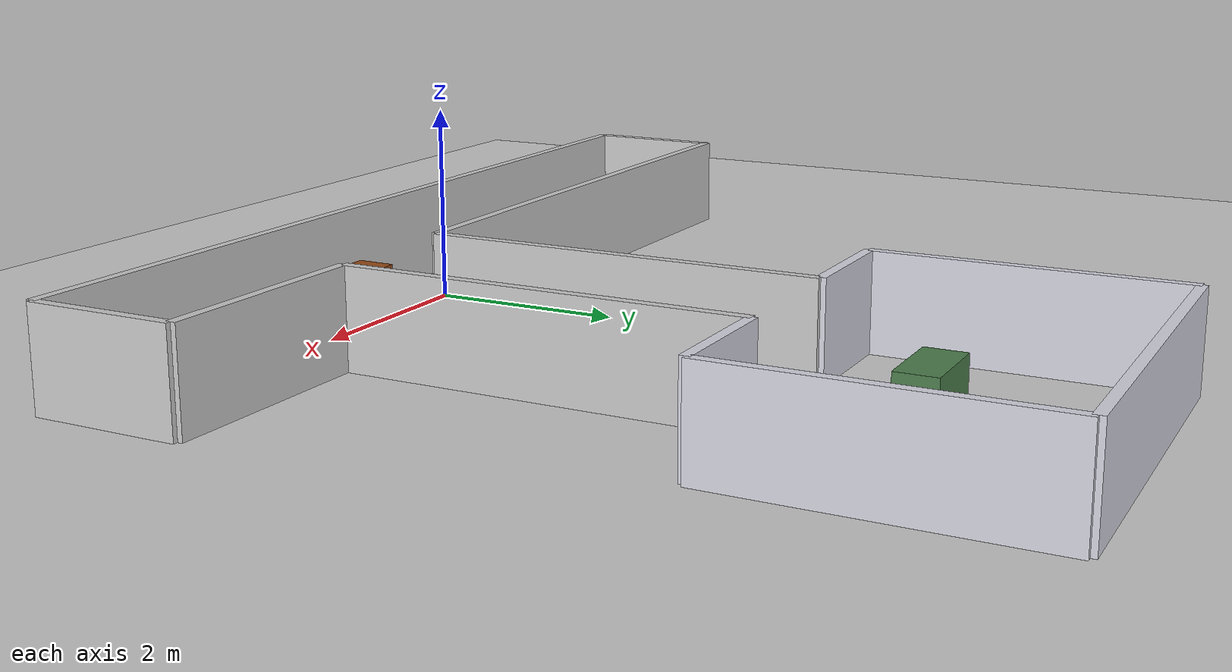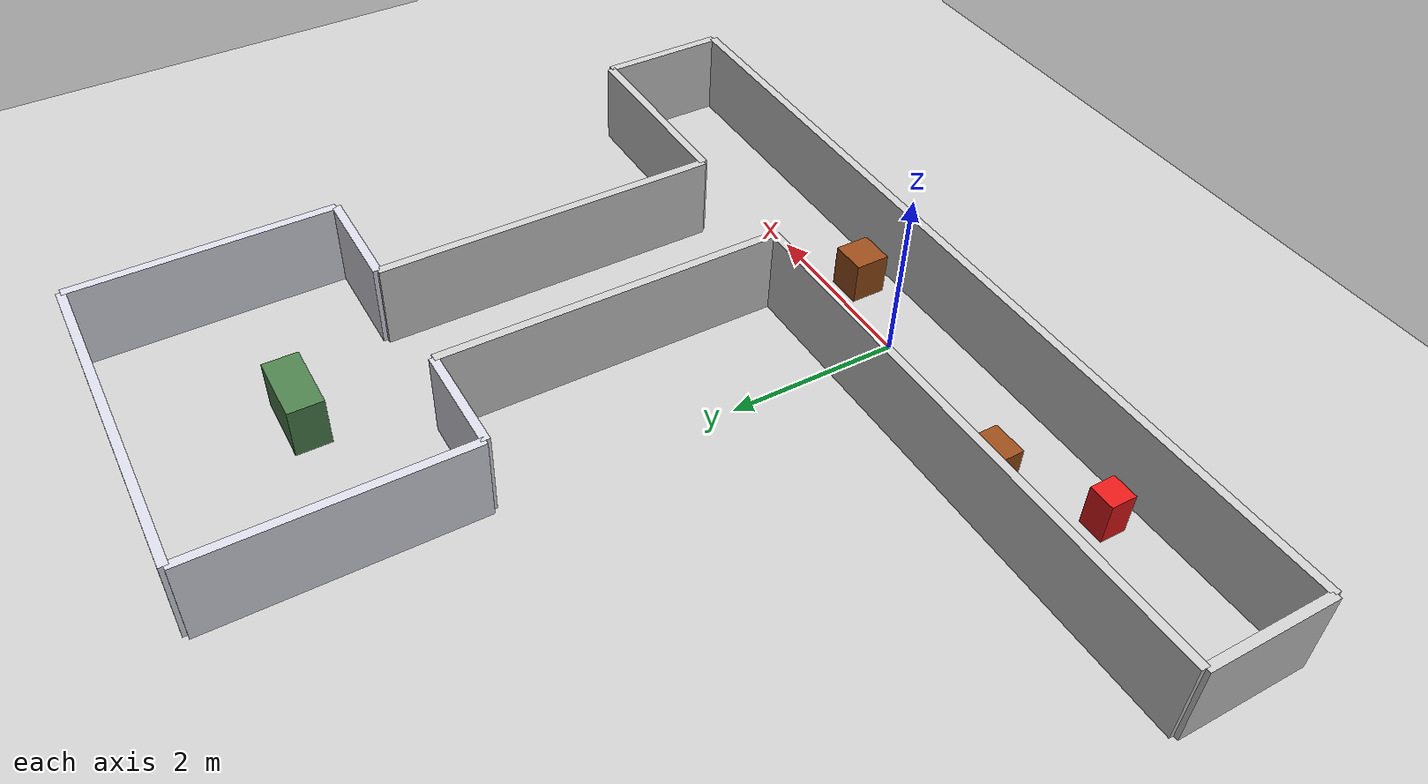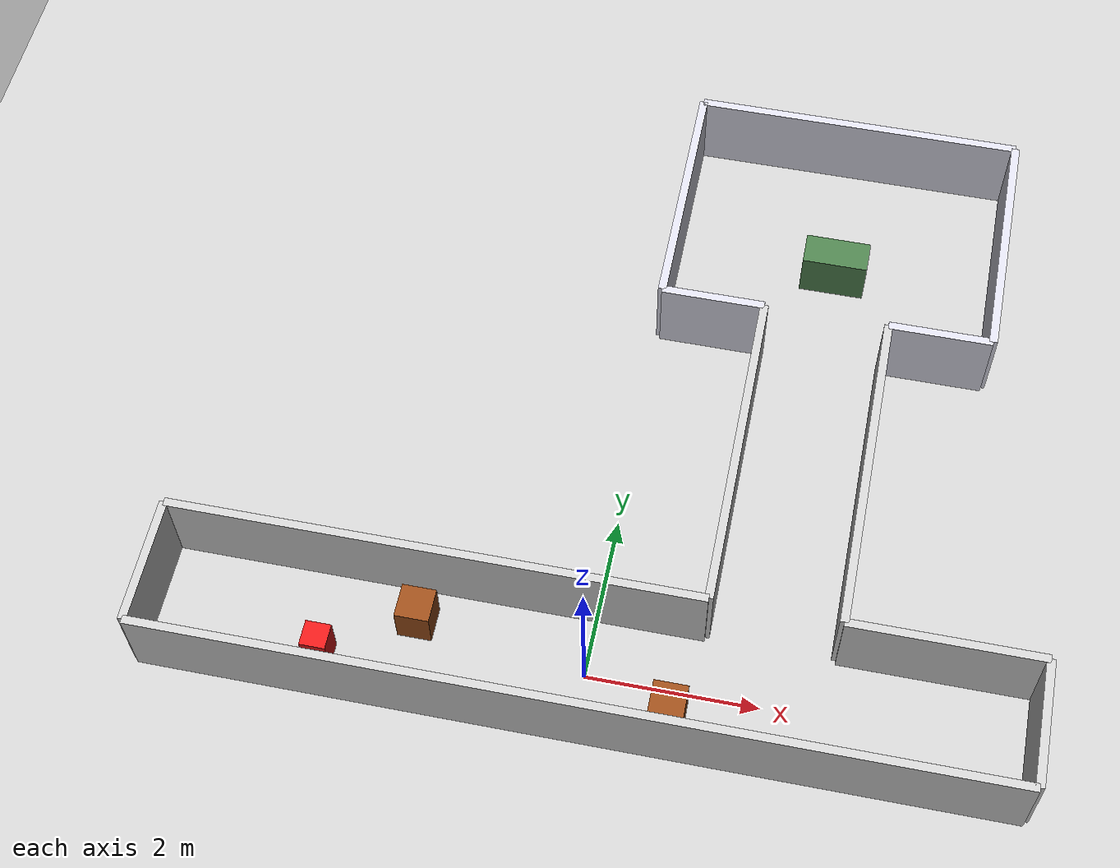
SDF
<?xml version="1.0" ?>
<sdf version="1.6">
  <world name="augdd_hospital">

    <include><uri>model://sun</uri></include>
    <include><uri>model://ground_plane</uri></include>

    <physics type="ode">
      <max_step_size>0.001</max_step_size>
      <real_time_factor>1</real_time_factor>
      <real_time_update_rate>1000</real_time_update_rate>
    </physics>

    <model name="wall_north_1">
      <static>true</static>
      <pose>-1.875 0.75 0.5 0 0 0</pose>
      <link name="link">
        <collision name="c"><geometry><box><size>6.25 0.1 1.0</size></box></geometry></collision>
        <visual name="v"><geometry><box><size>6.25 0.1 1.0</size></box></geometry>
          <material><ambient>0.8 0.8 0.8 1</ambient><diffuse>0.8 0.8 0.8 1</diffuse></material>
        </visual>
      </link>
    </model>

    <model name="wall_north_2">
      <static>true</static>
      <pose>3.875 0.75 0.5 0 0 0</pose>
      <link name="link">
        <collision name="c"><geometry><box><size>2.25 0.1 1.0</size></box></geometry></collision>
        <visual name="v"><geometry><box><size>2.25 0.1 1.0</size></box></geometry>
          <material><ambient>0.8 0.8 0.8 1</ambient><diffuse>0.8 0.8 0.8 1</diffuse></material>
        </visual>
      </link>
    </model>

    <model name="wall_south">
      <static>true</static>
      <pose>0 -0.75 0.5 0 0 0</pose>
      <link name="link">
        <collision name="c"><geometry><box><size>10.0 0.1 1.0</size></box></geometry></collision>
        <visual name="v"><geometry><box><size>10.0 0.1 1.0</size></box></geometry>
          <material><ambient>0.8 0.8 0.8 1</ambient><diffuse>0.8 0.8 0.8 1</diffuse></material>
        </visual>
      </link>
    </model>

    <model name="wall_west_end">
      <static>true</static>
      <pose>-5 0 0.5 0 0 0</pose>
      <link name="link">
        <collision name="c"><geometry><box><size>0.1 1.5 1.0</size></box></geometry></collision>
        <visual name="v"><geometry><box><size>0.1 1.5 1.0</size></box></geometry>
          <material><ambient>0.8 0.8 0.8 1</ambient><diffuse>0.8 0.8 0.8 1</diffuse></material>
        </visual>
      </link>
    </model>

    <model name="wall_east_end">
      <static>true</static>
      <pose>5 0 0.5 0 0 0</pose>
      <link name="link">
        <collision name="c"><geometry><box><size>0.1 1.5 1.0</size></box></geometry></collision>
        <visual name="v"><geometry><box><size>0.1 1.5 1.0</size></box></geometry>
          <material><ambient>0.8 0.8 0.8 1</ambient><diffuse>0.8 0.8 0.8 1</diffuse></material>
        </visual>
      </link>
    </model>

    <model name="branch_wall_west">
      <static>true</static>
      <pose>1.25 2.75 0.5 0 0 0</pose>
      <link name="link">
        <collision name="c"><geometry><box><size>0.1 4.0 1.0</size></box></geometry></collision>
        <visual name="v"><geometry><box><size>0.1 4.0 1.0</size></box></geometry>
          <material><ambient>0.8 0.8 0.8 1</ambient><diffuse>0.8 0.8 0.8 1</diffuse></material>
        </visual>
      </link>
    </model>

    <model name="branch_wall_east">
      <static>true</static>
      <pose>2.75 2.75 0.5 0 0 0</pose>
      <link name="link">
        <collision name="c"><geometry><box><size>0.1 4.0 1.0</size></box></geometry></collision>
        <visual name="v"><geometry><box><size>0.1 4.0 1.0</size></box></geometry>
          <material><ambient>0.8 0.8 0.8 1</ambient><diffuse>0.8 0.8 0.8 1</diffuse></material>
        </visual>
      </link>
    </model>

    <model name="room_south_1">
      <static>true</static>
      <pose>0.625 4.75 0.5 0 0 0</pose>
      <link name="link">
        <collision name="c"><geometry><box><size>1.25 0.1 1.0</size></box></geometry></collision>
        <visual name="v"><geometry><box><size>1.25 0.1 1.0</size></box></geometry>
          <material><ambient>0.85 0.85 0.9 1</ambient><diffuse>0.85 0.85 0.9 1</diffuse></material>
        </visual>
      </link>
    </model>

    <model name="room_south_2">
      <static>true</static>
      <pose>3.375 4.75 0.5 0 0 0</pose>
      <link name="link">
        <collision name="c"><geometry><box><size>1.25 0.1 1.0</size></box></geometry></collision>
        <visual name="v"><geometry><box><size>1.25 0.1 1.0</size></box></geometry>
          <material><ambient>0.85 0.85 0.9 1</ambient><diffuse>0.85 0.85 0.9 1</diffuse></material>
        </visual>
      </link>
    </model>

    <model name="room_north">
      <static>true</static>
      <pose>2 7.75 0.5 0 0 0</pose>
      <link name="link">
        <collision name="c"><geometry><box><size>4.0 0.1 1.0</size></box></geometry></collision>
        <visual name="v"><geometry><box><size>4.0 0.1 1.0</size></box></geometry>
          <material><ambient>0.85 0.85 0.9 1</ambient><diffuse>0.85 0.85 0.9 1</diffuse></material>
        </visual>
      </link>
    </model>

    <model name="room_west">
      <static>true</static>
      <pose>0 6.25 0.5 0 0 0</pose>
      <link name="link">
        <collision name="c"><geometry><box><size>0.1 3.0 1.0</size></box></geometry></collision>
        <visual name="v"><geometry><box><size>0.1 3.0 1.0</size></box></geometry>
          <material><ambient>0.85 0.85 0.9 1</ambient><diffuse>0.85 0.85 0.9 1</diffuse></material>
        </visual>
      </link>
    </model>

    <model name="room_east">
      <static>true</static>
      <pose>4 6.25 0.5 0 0 0</pose>
      <link name="link">
        <collision name="c"><geometry><box><size>0.1 3.0 1.0</size></box></geometry></collision>
        <visual name="v"><geometry><box><size>0.1 3.0 1.0</size></box></geometry>
          <material><ambient>0.85 0.85 0.9 1</ambient><diffuse>0.85 0.85 0.9 1</diffuse></material>
        </visual>
      </link>
    </model>

    <!-- Static obstacles (representing carts/equipment in the corridor) -->
    <model name="obstacle_cart_1">
      <static>true</static>
      <pose>-2 0.3 0.25 0 0 0</pose>
      <link name="link">
        <collision name="c"><geometry><box><size>0.4 0.4 0.5</size></box></geometry></collision>
        <visual name="v"><geometry><box><size>0.4 0.4 0.5</size></box></geometry>
          <material><ambient>0.6 0.3 0.1 1</ambient><diffuse>0.6 0.3 0.1 1</diffuse></material>
        </visual>
      </link>
    </model>

    <model name="obstacle_cart_2">
      <static>true</static>
      <pose>1 -0.3 0.25 0 0 0</pose>
      <link name="link">
        <collision name="c"><geometry><box><size>0.4 0.4 0.5</size></box></geometry></collision>
        <visual name="v"><geometry><box><size>0.4 0.4 0.5</size></box></geometry>
          <material><ambient>0.6 0.3 0.1 1</ambient><diffuse>0.6 0.3 0.1 1</diffuse></material>
        </visual>
      </link>
    </model>

    <model name="obstacle_room_furniture">
      <static>true</static>
      <pose>2 6.0 0.3 0 0 0</pose>
      <link name="link">
        <collision name="c"><geometry><box><size>0.8 0.4 0.6</size></box></geometry></collision>
        <visual name="v"><geometry><box><size>0.8 0.4 0.6</size></box></geometry>
          <material><ambient>0.3 0.5 0.3 1</ambient><diffuse>0.3 0.5 0.3 1</diffuse></material>
        </visual>
      </link>
    </model>

    <!-- NOT static: drag this in the Gazebo GUI during a Nav2 run to create
         an ad-hoc "dynamic obstacle" test without needing an actor plugin -->
    <model name="movable_obstacle">
      <pose>-3 -0.3 0.25 0 0 0</pose>
      <link name="link">
        <inertial><mass>2.0</mass></inertial>
        <collision name="c"><geometry><box><size>0.3 0.3 0.5</size></box></geometry></collision>
        <visual name="v"><geometry><box><size>0.3 0.3 0.5</size></box></geometry>
          <material><ambient>0.9 0.1 0.1 1</ambient><diffuse>0.9 0.1 0.1 1</diffuse></material>
        </visual>
      </link>
    </model>

  </world>
</sdf>
